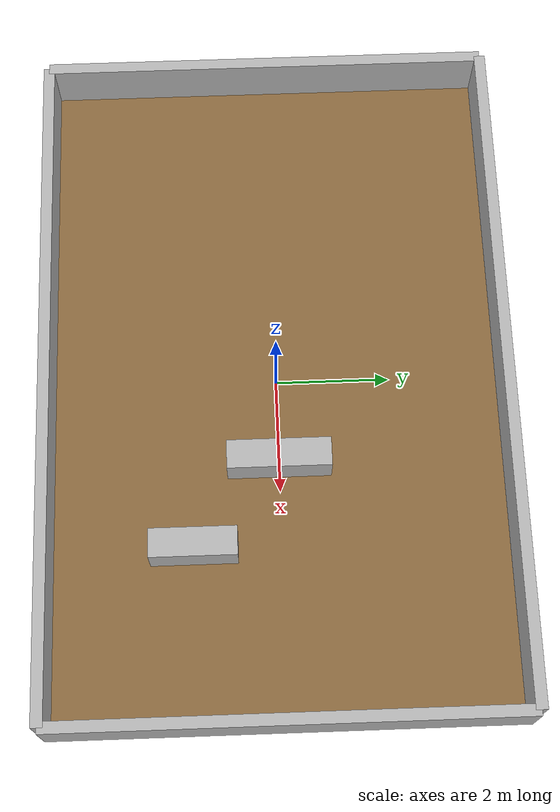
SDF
<?xml version="1.0" ?>
<sdf version="1.10">
  <world name="obstacle_test_world">

    <plugin filename="gz-sim-physics-system" name="gz::sim::systems::Physics"/>
    <plugin filename="gz-sim-scene-broadcaster-system" name="gz::sim::systems::SceneBroadcaster"/>
    <plugin filename="gz-sim-user-commands-system" name="gz::sim::systems::UserCommands"/>

    <light type="directional" name="sun">
      <pose>0 0 10 0 0 0</pose>
      <diffuse>0.8 0.8 0.8 1</diffuse>
      <direction>-0.5 0.2 -1</direction>
    </light>

    <!-- chão plano -->
    <model name="ground">
      <static>true</static>
      <link name="link">
        <collision name="collision">
          <geometry><box><size>12 8 0.1</size></box></geometry>
        </collision>
        <visual name="visual">
          <geometry><box><size>12 8 0.1</size></box></geometry>
          <material>
            <ambient>0.45 0.35 0.22 1</ambient>
            <diffuse>0.55 0.42 0.25 1</diffuse>
          </material>
        </visual>
      </link>
    </model>

    <!-- paredes limites -->
    <model name="wall_front">
      <static>true</static>
      <pose>6 0 0.5 0 0 0</pose>
      <link name="link">
        <collision name="collision"><geometry><box><size>0.2 8 1</size></box></geometry></collision>
        <visual name="visual"><geometry><box><size>0.2 8 1</size></box></geometry></visual>
      </link>
    </model>

    <model name="wall_back">
      <static>true</static>
      <pose>-6 0 0.5 0 0 0</pose>
      <link name="link">
        <collision name="collision"><geometry><box><size>0.2 8 1</size></box></geometry></collision>
        <visual name="visual"><geometry><box><size>0.2 8 1</size></box></geometry></visual>
      </link>
    </model>

    <model name="wall_left">
      <static>true</static>
      <pose>0 4 0.5 0 0 0</pose>
      <link name="link">
        <collision name="collision"><geometry><box><size>12 0.2 1</size></box></geometry></collision>
        <visual name="visual"><geometry><box><size>12 0.2 1</size></box></geometry></visual>
      </link>
    </model>

    <model name="wall_right">
      <static>true</static>
      <pose>0 -4 0.5 0 0 0</pose>
      <link name="link">
        <collision name="collision"><geometry><box><size>12 0.2 1</size></box></geometry></collision>
        <visual name="visual"><geometry><box><size>12 0.2 1</size></box></geometry></visual>
      </link>
    </model>

    <!-- obstáculos -->
    <model name="obstacle_1">
      <static>true</static>
      <pose>1.5 0 0.35 0 0 0</pose>
      <link name="link">
        <collision name="collision"><geometry><box><size>0.5 1.8 0.7</size></box></geometry></collision>
        <visual name="visual"><geometry><box><size>0.5 1.8 0.7</size></box></geometry></visual>
      </link>
    </model>

    <model name="obstacle_2">
      <static>true</static>
      <pose>3 -1.5 0.35 0 0 0</pose>
      <link name="link">
        <collision name="collision"><geometry><box><size>0.5 1.5 0.7</size></box></geometry></collision>
        <visual name="visual"><geometry><box><size>0.5 1.5 0.7</size></box></geometry></visual>
      </link>
    </model>

    <!-- marca visual do destino -->
    <model name="goal_marker">
      <static>true</static>
      <pose>4.8 2.5 0.03 0 0 0</pose>
      <link name="link">
        <visual name="visual">
          <geometry><cylinder><radius>0.25</radius><length>0.03</length></cylinder></geometry>
          <material><ambient>1 0 0 1</ambient><diffuse>1 0 0 1</diffuse></material>
        </visual>
      </link>
    </model>

  </world>
</sdf>
